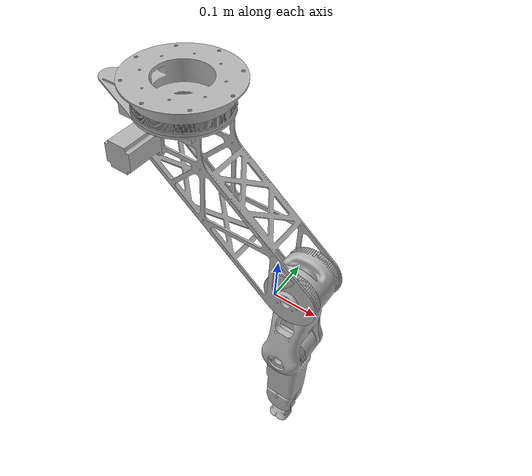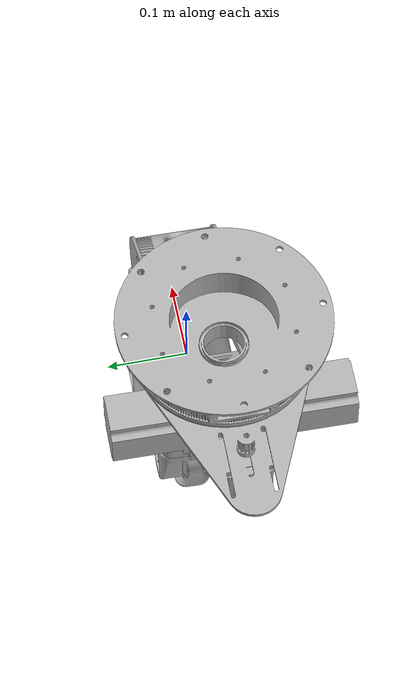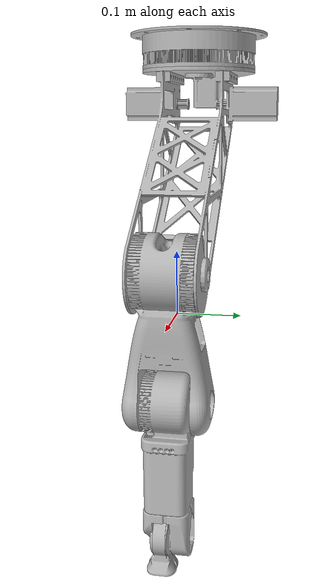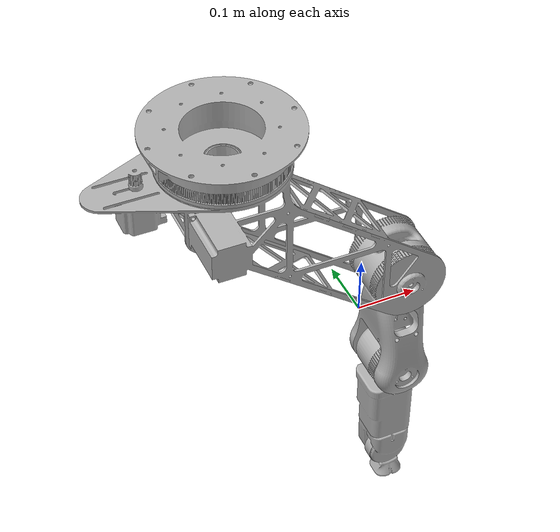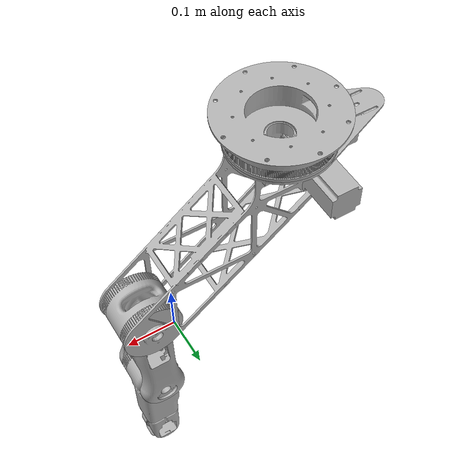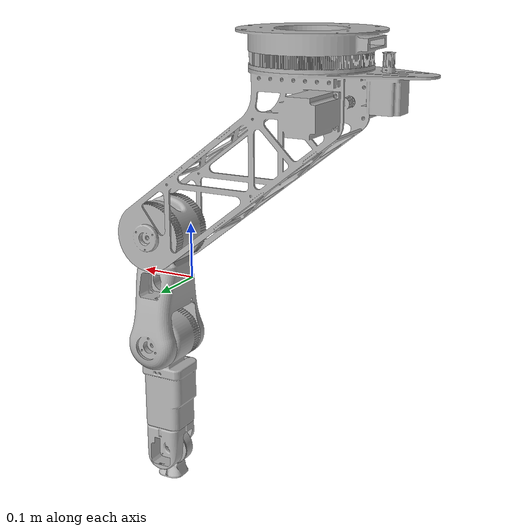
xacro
<?xml version="1.0" ?>
<robot name="URDF_assembly" xmlns:xacro="http://www.ros.org/wiki/xacro">

<xacro:include filename="$(find URDF_assembly_description)/urdf/materials.xacro" />
<xacro:include filename="$(find URDF_assembly_description)/urdf/URDF_assembly.trans" />
<xacro:include filename="$(find URDF_assembly_description)/urdf/URDF_assembly.gazebo" />
<link name="base_link">
  <inertial>
    <origin rpy="0 0 0" xyz="-0.23054490976253805 -8.963206315502984e-09 0.41686009175563504"/>
    <mass value="3.002480048799235"/>
    <inertia ixx="0.01174" ixy="-0.0" ixz="-2.7e-05" iyy="0.011554" iyz="-0.0" izz="0.02133"/>
  </inertial>
  <visual>
    <origin rpy="0 0 0" xyz="0 0 0"/>
    <geometry>
      <mesh filename="package://URDF_assembly_description/meshes/base_link.stl" scale="0.001 0.001 0.001"/>
    </geometry>
    <material name="silver"/>
  </visual>
  <collision>
    <origin rpy="0 0 0" xyz="0 0 0"/>
    <geometry>
      <mesh filename="package://URDF_assembly_description/meshes/base_link.stl" scale="0.001 0.001 0.001"/>
    </geometry>
  </collision>
</link>

<link name="joint_link_1_1">
  <inertial>
    <origin rpy="0 0 0" xyz="-0.002263140605728825 2.6438566772442577e-05 -0.0800861120636212"/>
    <mass value="3.659594519084256"/>
    <inertia ixx="0.04654" ixy="0.000385" ixz="0.031279" iyy="0.078209" iyz="-0.00038" izz="0.069305"/>
  </inertial>
  <visual>
    <origin rpy="0 0 0" xyz="0.231608 -0.0 -0.384151"/>
    <geometry>
      <mesh filename="package://URDF_assembly_description/meshes/joint_link_1_1.stl" scale="0.001 0.001 0.001"/>
    </geometry>
    <material name="silver"/>
  </visual>
  <collision>
    <origin rpy="0 0 0" xyz="0.231608 -0.0 -0.384151"/>
    <geometry>
      <mesh filename="package://URDF_assembly_description/meshes/joint_link_1_1.stl" scale="0.001 0.001 0.001"/>
    </geometry>
  </collision>
</link>

<link name="joint_link_2_1">
  <inertial>
    <origin rpy="0 0 0" xyz="0.0006604543328198875 0.04903458537714363 -0.06641757235563236"/>
    <mass value="4.571579119679246"/>
    <inertia ixx="0.03739" ixy="-5.1e-05" ixz="7e-06" iyy="0.035561" iyz="-6e-06" izz="0.00903"/>
  </inertial>
  <visual>
    <origin rpy="0 0 0" xyz="-0.059389 0.052245 -0.077901"/>
    <geometry>
      <mesh filename="package://URDF_assembly_description/meshes/joint_link_2_1.stl" scale="0.001 0.001 0.001"/>
    </geometry>
    <material name="silver"/>
  </visual>
  <collision>
    <origin rpy="0 0 0" xyz="-0.059389 0.052245 -0.077901"/>
    <geometry>
      <mesh filename="package://URDF_assembly_description/meshes/joint_link_2_1.stl" scale="0.001 0.001 0.001"/>
    </geometry>
  </collision>
</link>

<link name="joint_link_3_1">
  <inertial>
    <origin rpy="0 0 0" xyz="-0.00010267567677357814 0.041744195219170596 -0.044474665169169786"/>
    <mass value="2.0293161281543504"/>
    <inertia ixx="0.008646" ixy="4e-06" ixz="-8.5e-05" iyy="0.008977" iyz="-1.8e-05" izz="0.002245"/>
  </inertial>
  <visual>
    <origin rpy="0 0 0" xyz="-0.058971 0.045985 0.126546"/>
    <geometry>
      <mesh filename="package://URDF_assembly_description/meshes/joint_link_3_1.stl" scale="0.001 0.001 0.001"/>
    </geometry>
    <material name="silver"/>
  </visual>
  <collision>
    <origin rpy="0 0 0" xyz="-0.058971 0.045985 0.126546"/>
    <geometry>
      <mesh filename="package://URDF_assembly_description/meshes/joint_link_3_1.stl" scale="0.001 0.001 0.001"/>
    </geometry>
  </collision>
</link>

<link name="joint_link_4_1">
  <inertial>
    <origin rpy="0 0 0" xyz="3.358799772812393e-06 0.00022382765797515983 -0.031684354305096585"/>
    <mass value="0.4540044507376818"/>
    <inertia ixx="0.000494" ixy="-1e-06" ixz="0.0" iyy="0.000433" iyz="2e-05" izz="0.000431"/>
  </inertial>
  <visual>
    <origin rpy="0 0 0" xyz="-0.059966 0.004848 0.300955"/>
    <geometry>
      <mesh filename="package://URDF_assembly_description/meshes/joint_link_4_1.stl" scale="0.001 0.001 0.001"/>
    </geometry>
    <material name="silver"/>
  </visual>
  <collision>
    <origin rpy="0 0 0" xyz="-0.059966 0.004848 0.300955"/>
    <geometry>
      <mesh filename="package://URDF_assembly_description/meshes/joint_link_4_1.stl" scale="0.001 0.001 0.001"/>
    </geometry>
  </collision>
</link>

<link name="joint_link_5_1">
  <inertial>
    <origin rpy="0 0 0" xyz="0.0032455273421979278 0.00991369943882629 -0.03522105014516702"/>
    <mass value="0.14558350320287125"/>
    <inertia ixx="0.000111" ixy="0.0" ixz="6e-06" iyy="0.000136" iyz="-0.0" izz="5.2e-05"/>
  </inertial>
  <visual>
    <origin rpy="0 0 0" xyz="-0.059717 0.025347 0.353955"/>
    <geometry>
      <mesh filename="package://URDF_assembly_description/meshes/joint_link_5_1.stl" scale="0.001 0.001 0.001"/>
    </geometry>
    <material name="silver"/>
  </visual>
  <collision>
    <origin rpy="0 0 0" xyz="-0.059717 0.025347 0.353955"/>
    <geometry>
      <mesh filename="package://URDF_assembly_description/meshes/joint_link_5_1.stl" scale="0.001 0.001 0.001"/>
    </geometry>
  </collision>
</link>

<joint name="Joint_1" type="continuous">
  <origin rpy="0 0 0" xyz="-0.231608 0.0 0.384151"/>
  <parent link="base_link"/>
  <child link="joint_link_1_1"/>
  <axis xyz="-0.0 0.0 -1.0"/>
</joint>

<joint name="Joint_2" type="continuous">
  <origin rpy="0 0 0" xyz="0.290997 -0.052245 -0.30625"/>
  <parent link="joint_link_1_1"/>
  <child link="joint_link_2_1"/>
  <axis xyz="0.012169 0.999926 0.0"/>
</joint>

<joint name="Joint_3" type="continuous">
  <origin rpy="0 0 0" xyz="-0.000418 0.00626 -0.204447"/>
  <parent link="joint_link_2_1"/>
  <child link="joint_link_3_1"/>
  <axis xyz="-0.012169 -0.999926 0.0"/>
</joint>

<joint name="Joint_4" type="continuous">
  <origin rpy="0 0 0" xyz="0.000995 0.041137 -0.174409"/>
  <parent link="joint_link_3_1"/>
  <child link="joint_link_4_1"/>
  <axis xyz="-0.0 -0.0 -1.0"/>
</joint>

<joint name="Joint_5" type="continuous">
  <origin rpy="0 0 0" xyz="-0.000249 -0.020499 -0.053"/>
  <parent link="joint_link_4_1"/>
  <child link="joint_link_5_1"/>
  <axis xyz="-0.012169 -0.999926 0.0"/>
</joint>

</robot>

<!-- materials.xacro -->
<robot name="URDF_assembly" xmlns:xacro="http://www.ros.org/wiki/xacro" >

<material name="silver">
  <color rgba="0.700 0.700 0.700 1.000"/>
</material>

</robot>

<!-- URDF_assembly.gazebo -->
<robot name="URDF_assembly" xmlns:xacro="http://www.ros.org/wiki/xacro" >

<xacro:property name="body_color" value="Gazebo/Silver" />

<gazebo>
  <plugin filename="libgazebo_ros_control.so" name="control"/>
</gazebo>
<gazebo reference="base_link">
  <material>${body_color}</material>
  <mu1>0.2</mu1>
  <mu2>0.2</mu2>
  <selfCollide>true</selfCollide>
  <gravity>true</gravity>
</gazebo>

<gazebo reference="joint_link_1_1">
  <material>${body_color}</material>
  <mu1>0.2</mu1>
  <mu2>0.2</mu2>
  <selfCollide>true</selfCollide>
</gazebo>

<gazebo reference="joint_link_2_1">
  <material>${body_color}</material>
  <mu1>0.2</mu1>
  <mu2>0.2</mu2>
  <selfCollide>true</selfCollide>
</gazebo>

<gazebo reference="joint_link_3_1">
  <material>${body_color}</material>
  <mu1>0.2</mu1>
  <mu2>0.2</mu2>
  <selfCollide>true</selfCollide>
</gazebo>

<gazebo reference="joint_link_4_1">
  <material>${body_color}</material>
  <mu1>0.2</mu1>
  <mu2>0.2</mu2>
  <selfCollide>true</selfCollide>
</gazebo>

<gazebo reference="joint_link_5_1">
  <material>${body_color}</material>
  <mu1>0.2</mu1>
  <mu2>0.2</mu2>
  <selfCollide>true</selfCollide>
</gazebo>

</robot>
